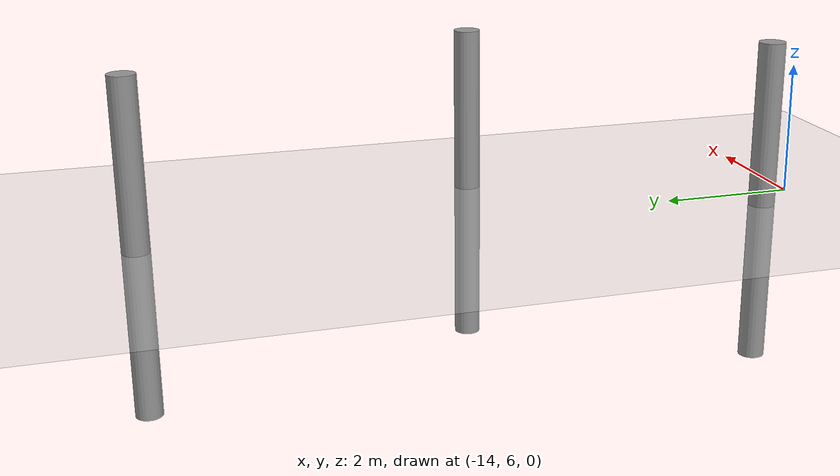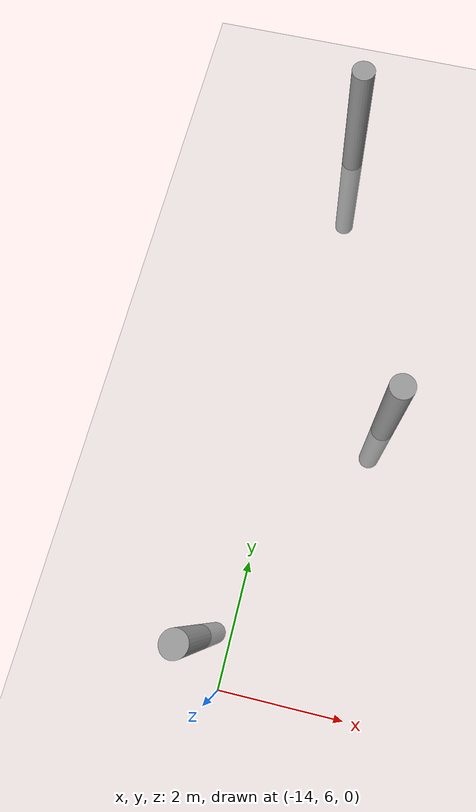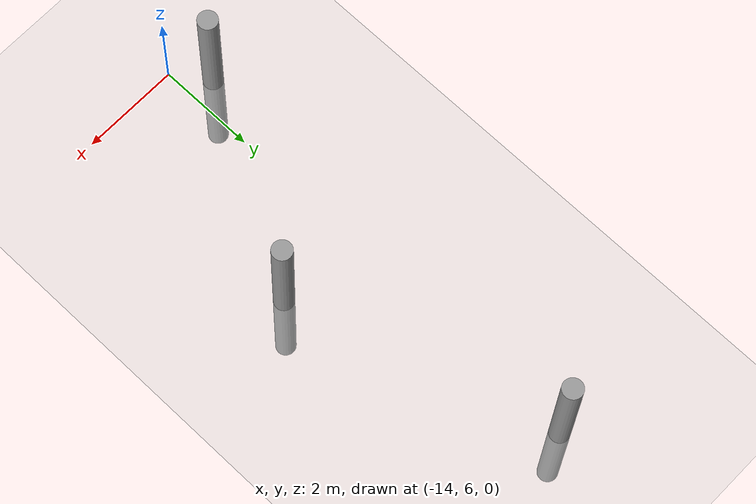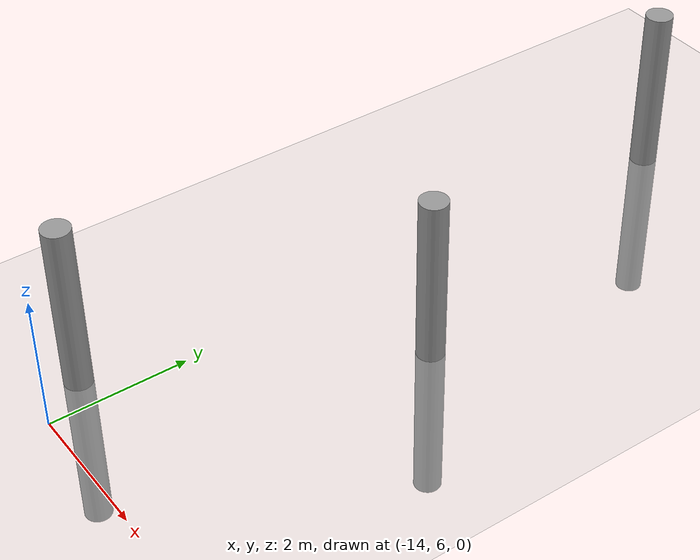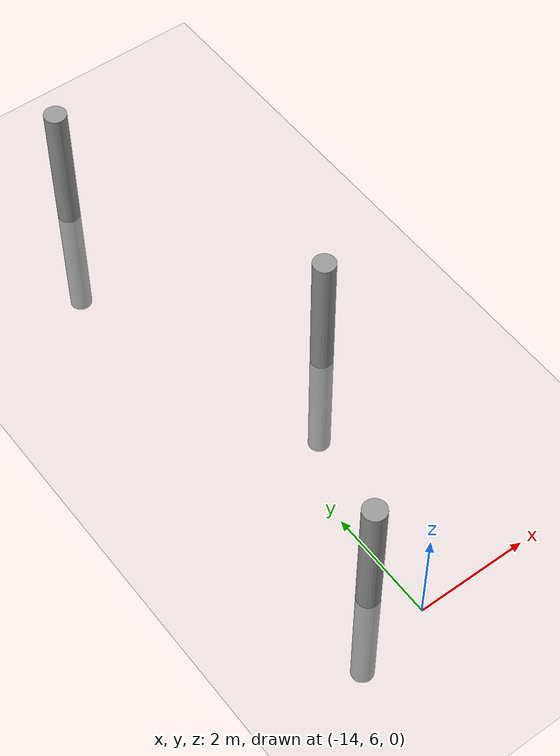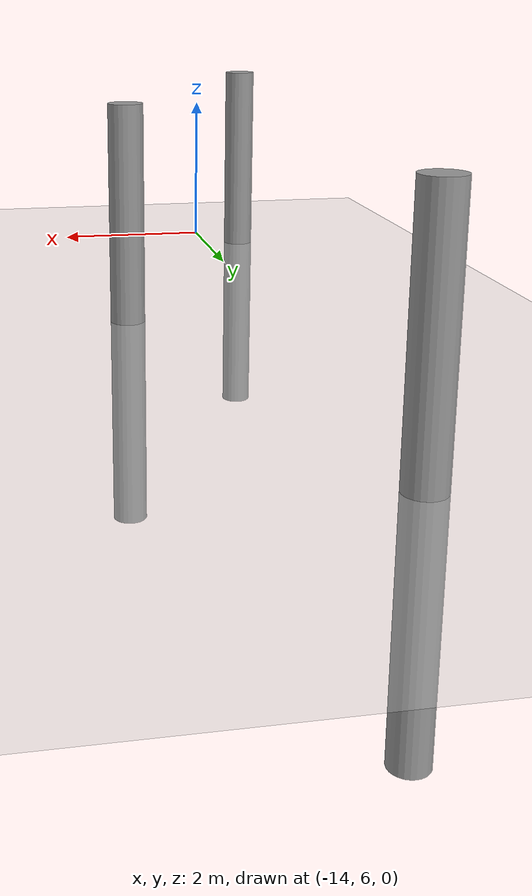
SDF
<sdf version="1.6">
 <world name="default">
  <model name="ground_plane">
   <static>1</static>
   <link name="link">
    <collision name="collision">
     <geometry><plane><normal>0 0 1</normal><size>100 100</size></plane></geometry>
     <surface><friction><ode><mu>100</mu><mu2>50</mu2></ode></friction></surface>
    </collision>
    <visual name="visual">
     <cast_shadows>0</cast_shadows>
     <geometry><plane><normal>0 0 1</normal><size>100 100</size></plane></geometry>
     <material>
      <script><uri>file://media/materials/scripts/gazebo.material</uri><name>Gazebo/Grey</name></script>
     </material>
    </visual>
   </link>
  </model>
  <model name="empty_pillars_5">
   <model name="empty_pillar_clone_10">
    <link name="link">
     <inertial>
      <mass>1</mass>
      <inertia><ixx>0.145833</ixx><ixy>0</ixy><ixz>0</ixz><iyy>0.145833</iyy><iyz>0</iyz><izz>0.125</izz></inertia>
     </inertial>
     <visual name="visual">
      <geometry><cylinder><radius>0.2</radius><length>5</length></cylinder></geometry>
      <material>
       <script><name>Gazebo/Grey</name><uri>file://media/materials/scripts/gazebo.material</uri></script>
       <shader type="vertex"><normal_map>__default__</normal_map></shader>
       <ambient>0.3 0.3 0.3 1</ambient>
       <diffuse>0.7 0.7 0.7 1</diffuse>
       <specular>0.01 0.01 0.01 1</specular>
       <emissive>0 0 0 1</emissive>
      </material>
     </visual>
     <collision name="collision">
      <geometry><cylinder><radius>0.05</radius><length>5</length></cylinder></geometry>
      <surface>
       <friction>
        <ode><mu>1</mu><mu2>1</mu2><fdir1>0 0 0</fdir1><slip1>0</slip1><slip2>0</slip2></ode>
        <torsional>
         <coefficient>1</coefficient>
         <patch_radius>0</patch_radius>
         <surface_radius>0</surface_radius>
         <use_patch_radius>1</use_patch_radius>
         <ode><slip>0</slip></ode>
        </torsional>
       </friction>
       <bounce><restitution_coefficient>0</restitution_coefficient><threshold>1e+06</threshold></bounce>
       <contact>
        <collide_without_contact>0</collide_without_contact>
        <collide_without_contact_bitmask>1</collide_without_contact_bitmask>
        <collide_bitmask>1</collide_bitmask>
        <ode>
         <soft_cfm>0</soft_cfm>
         <soft_erp>0.2</soft_erp>
         <kp>1e+13</kp>
         <kd>1</kd>
         <max_vel>0.01</max_vel>
         <min_depth>0</min_depth>
        </ode>
        <bullet>
         <split_impulse>1</split_impulse>
         <split_impulse_penetration_threshold>-0.01</split_impulse_penetration_threshold>
         <soft_cfm>0</soft_cfm>
         <soft_erp>0.2</soft_erp>
         <kp>1e+13</kp>
         <kd>1</kd>
        </bullet>
       </contact>
      </surface>
     </collision>
    </link>
    <static>0</static>
    <pose>13.5083 -16.8403 0 0 -0 0</pose>
   </model>
   <model name="empty_pillar_clone_51">
    <link name="link">
     <inertial>
      <mass>1</mass>
      <inertia><ixx>0.145833</ixx><ixy>0</ixy><ixz>0</ixz><iyy>0.145833</iyy><iyz>0</iyz><izz>0.125</izz></inertia>
     </inertial>
     <visual name="visual">
      <geometry><cylinder><radius>0.2</radius><length>5</length></cylinder></geometry>
      <material>
       <script><name>Gazebo/Grey</name><uri>file://media/materials/scripts/gazebo.material</uri></script>
       <shader type="vertex"><normal_map>__default__</normal_map></shader>
       <ambient>0.3 0.3 0.3 1</ambient>
       <diffuse>0.7 0.7 0.7 1</diffuse>
       <specular>0.01 0.01 0.01 1</specular>
       <emissive>0 0 0 1</emissive>
      </material>
     </visual>
     <collision name="collision">
      <geometry><cylinder><radius>0.05</radius><length>5</length></cylinder></geometry>
      <surface>
       <friction>
        <ode><mu>1</mu><mu2>1</mu2><fdir1>0 0 0</fdir1><slip1>0</slip1><slip2>0</slip2></ode>
        <torsional>
         <coefficient>1</coefficient>
         <patch_radius>0</patch_radius>
         <surface_radius>0</surface_radius>
         <use_patch_radius>1</use_patch_radius>
         <ode><slip>0</slip></ode>
        </torsional>
       </friction>
       <bounce><restitution_coefficient>0</restitution_coefficient><threshold>1e+06</threshold></bounce>
       <contact>
        <collide_without_contact>0</collide_without_contact>
        <collide_without_contact_bitmask>1</collide_without_contact_bitmask>
        <collide_bitmask>1</collide_bitmask>
        <ode>
         <soft_cfm>0</soft_cfm>
         <soft_erp>0.2</soft_erp>
         <kp>1e+13</kp>
         <kd>1</kd>
         <max_vel>0.01</max_vel>
         <min_depth>0</min_depth>
        </ode>
        <bullet>
         <split_impulse>1</split_impulse>
         <split_impulse_penetration_threshold>-0.01</split_impulse_penetration_threshold>
         <soft_cfm>0</soft_cfm>
         <soft_erp>0.2</soft_erp>
         <kp>1e+13</kp>
         <kd>1</kd>
        </bullet>
       </contact>
      </surface>
     </collision>
    </link>
    <static>0</static>
    <pose>11.8943 -11.5792 0 0 -0 0</pose>
   </model>
   <model name="empty_pillar_clone_52">
    <link name="link">
     <inertial>
      <mass>1</mass>
      <inertia><ixx>0.145833</ixx><ixy>0</ixy><ixz>0</ixz><iyy>0.145833</iyy><iyz>0</iyz><izz>0.125</izz></inertia>
     </inertial>
     <visual name="visual">
      <geometry><cylinder><radius>0.2</radius><length>5</length></cylinder></geometry>
      <material>
       <script><name>Gazebo/Grey</name><uri>file://media/materials/scripts/gazebo.material</uri></script>
       <shader type="vertex"><normal_map>__default__</normal_map></shader>
       <ambient>0.3 0.3 0.3 1</ambient>
       <diffuse>0.7 0.7 0.7 1</diffuse>
       <specular>0.01 0.01 0.01 1</specular>
       <emissive>0 0 0 1</emissive>
      </material>
     </visual>
     <collision name="collision">
      <geometry><cylinder><radius>0.05</radius><length>5</length></cylinder></geometry>
      <surface>
       <friction>
        <ode><mu>1</mu><mu2>1</mu2><fdir1>0 0 0</fdir1><slip1>0</slip1><slip2>0</slip2></ode>
        <torsional>
         <coefficient>1</coefficient>
         <patch_radius>0</patch_radius>
         <surface_radius>0</surface_radius>
         <use_patch_radius>1</use_patch_radius>
         <ode><slip>0</slip></ode>
        </torsional>
       </friction>
       <bounce><restitution_coefficient>0</restitution_coefficient><threshold>1e+06</threshold></bounce>
       <contact>
        <collide_without_contact>0</collide_without_contact>
        <collide_without_contact_bitmask>1</collide_without_contact_bitmask>
        <collide_bitmask>1</collide_bitmask>
        <ode>
         <soft_cfm>0</soft_cfm>
         <soft_erp>0.2</soft_erp>
         <kp>1e+13</kp>
         <kd>1</kd>
         <max_vel>0.01</max_vel>
         <min_depth>0</min_depth>
        </ode>
        <bullet>
         <split_impulse>1</split_impulse>
         <split_impulse_penetration_threshold>-0.01</split_impulse_penetration_threshold>
         <soft_cfm>0</soft_cfm>
         <soft_erp>0.2</soft_erp>
         <kp>1e+13</kp>
         <kd>1</kd>
        </bullet>
       </contact>
      </surface>
     </collision>
    </link>
    <static>0</static>
    <pose>11.2833 -20.8743 0 0 -0 0</pose>
   </model>
   <static>0</static>
   <pose>-25.786 27.5577 0 0 -0 0</pose>
  </model>
 </world>
</sdf>
